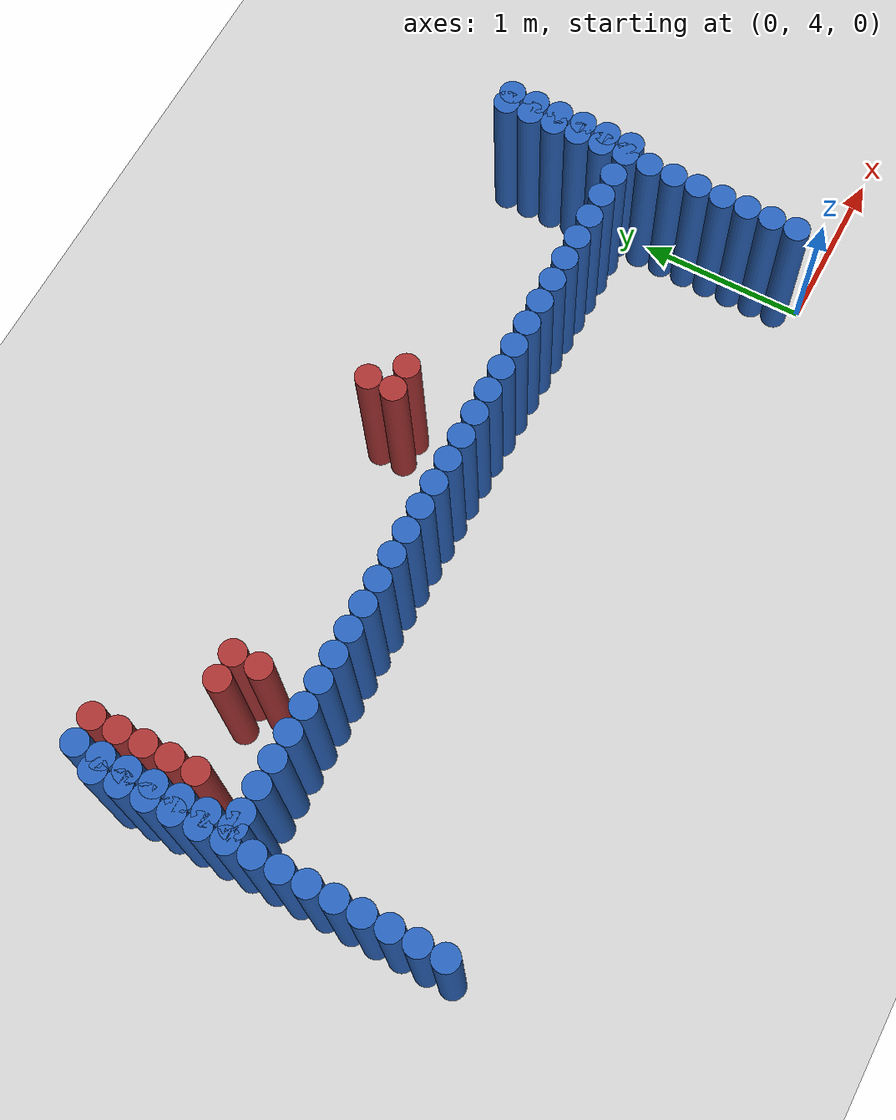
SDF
<sdf version="1.6">
 <world name="barn_world">
  <model name="ground_plane">
   <static>1</static>
   <link name="link">
    <collision name="collision">
     <geometry><plane><normal>0 0 1</normal><size>100 100</size></plane></geometry>
    </collision>
    <visual name="visual">
     <geometry><plane><normal>0 0 1</normal><size>100 100</size></plane></geometry>
     <material>
      <script><uri>file://media/materials/scripts/gazebo.material</uri><name>Gazebo/Grey</name></script>
     </material>
    </visual>
   </link>
  </model>
  <model name="unit_cylinder_81">
   <static>1</static>
   <pose>-4.4250 3.9750 0.5 0 0 0</pose>
   <link name="link">
    <collision name="collision">
     <geometry><cylinder><radius>0.075</radius><length>1</length></cylinder></geometry>
    </collision>
    <visual name="visual">
     <geometry><cylinder><radius>0.075</radius><length>1</length></cylinder></geometry>
     <material><ambient>0.152 0.379 0.72 1</ambient><diffuse>0.152 0.379 0.72 1</diffuse></material>
    </visual>
   </link>
  </model>
  <model name="unit_cylinder_82">
   <static>1</static>
   <pose>-0.0750 4.1250 0.5 0 0 0</pose>
   <link name="link">
    <collision name="collision">
     <geometry><cylinder><radius>0.075</radius><length>1</length></cylinder></geometry>
    </collision>
    <visual name="visual">
     <geometry><cylinder><radius>0.075</radius><length>1</length></cylinder></geometry>
     <material><ambient>0.152 0.379 0.72 1</ambient><diffuse>0.152 0.379 0.72 1</diffuse></material>
    </visual>
   </link>
  </model>
  <model name="unit_cylinder_83">
   <static>1</static>
   <pose>-4.4250 4.1250 0.5 0 0 0</pose>
   <link name="link">
    <collision name="collision">
     <geometry><cylinder><radius>0.075</radius><length>1</length></cylinder></geometry>
    </collision>
    <visual name="visual">
     <geometry><cylinder><radius>0.075</radius><length>1</length></cylinder></geometry>
     <material><ambient>0.152 0.379 0.72 1</ambient><diffuse>0.152 0.379 0.72 1</diffuse></material>
    </visual>
   </link>
  </model>
  <model name="unit_cylinder_84">
   <static>1</static>
   <pose>-0.0750 4.2750 0.5 0 0 0</pose>
   <link name="link">
    <collision name="collision">
     <geometry><cylinder><radius>0.075</radius><length>1</length></cylinder></geometry>
    </collision>
    <visual name="visual">
     <geometry><cylinder><radius>0.075</radius><length>1</length></cylinder></geometry>
     <material><ambient>0.152 0.379 0.72 1</ambient><diffuse>0.152 0.379 0.72 1</diffuse></material>
    </visual>
   </link>
  </model>
  <model name="unit_cylinder_85">
   <static>1</static>
   <pose>-4.4250 4.2750 0.5 0 0 0</pose>
   <link name="link">
    <collision name="collision">
     <geometry><cylinder><radius>0.075</radius><length>1</length></cylinder></geometry>
    </collision>
    <visual name="visual">
     <geometry><cylinder><radius>0.075</radius><length>1</length></cylinder></geometry>
     <material><ambient>0.152 0.379 0.72 1</ambient><diffuse>0.152 0.379 0.72 1</diffuse></material>
    </visual>
   </link>
  </model>
  <model name="unit_cylinder_86">
   <static>1</static>
   <pose>-0.0750 4.4250 0.5 0 0 0</pose>
   <link name="link">
    <collision name="collision">
     <geometry><cylinder><radius>0.075</radius><length>1</length></cylinder></geometry>
    </collision>
    <visual name="visual">
     <geometry><cylinder><radius>0.075</radius><length>1</length></cylinder></geometry>
     <material><ambient>0.152 0.379 0.72 1</ambient><diffuse>0.152 0.379 0.72 1</diffuse></material>
    </visual>
   </link>
  </model>
  <model name="unit_cylinder_87">
   <static>1</static>
   <pose>-4.4250 4.4250 0.5 0 0 0</pose>
   <link name="link">
    <collision name="collision">
     <geometry><cylinder><radius>0.075</radius><length>1</length></cylinder></geometry>
    </collision>
    <visual name="visual">
     <geometry><cylinder><radius>0.075</radius><length>1</length></cylinder></geometry>
     <material><ambient>0.152 0.379 0.72 1</ambient><diffuse>0.152 0.379 0.72 1</diffuse></material>
    </visual>
   </link>
  </model>
  <model name="unit_cylinder_88">
   <static>1</static>
   <pose>-0.0750 4.5750 0.5 0 0 0</pose>
   <link name="link">
    <collision name="collision">
     <geometry><cylinder><radius>0.075</radius><length>1</length></cylinder></geometry>
    </collision>
    <visual name="visual">
     <geometry><cylinder><radius>0.075</radius><length>1</length></cylinder></geometry>
     <material><ambient>0.152 0.379 0.72 1</ambient><diffuse>0.152 0.379 0.72 1</diffuse></material>
    </visual>
   </link>
  </model>
  <model name="unit_cylinder_89">
   <static>1</static>
   <pose>-4.4250 4.5750 0.5 0 0 0</pose>
   <link name="link">
    <collision name="collision">
     <geometry><cylinder><radius>0.075</radius><length>1</length></cylinder></geometry>
    </collision>
    <visual name="visual">
     <geometry><cylinder><radius>0.075</radius><length>1</length></cylinder></geometry>
     <material><ambient>0.152 0.379 0.72 1</ambient><diffuse>0.152 0.379 0.72 1</diffuse></material>
    </visual>
   </link>
  </model>
  <model name="unit_cylinder_90">
   <static>1</static>
   <pose>-0.0750 4.7250 0.5 0 0 0</pose>
   <link name="link">
    <collision name="collision">
     <geometry><cylinder><radius>0.075</radius><length>1</length></cylinder></geometry>
    </collision>
    <visual name="visual">
     <geometry><cylinder><radius>0.075</radius><length>1</length></cylinder></geometry>
     <material><ambient>0.152 0.379 0.72 1</ambient><diffuse>0.152 0.379 0.72 1</diffuse></material>
    </visual>
   </link>
  </model>
  <model name="unit_cylinder_91">
   <static>1</static>
   <pose>-4.4250 4.7250 0.5 0 0 0</pose>
   <link name="link">
    <collision name="collision">
     <geometry><cylinder><radius>0.075</radius><length>1</length></cylinder></geometry>
    </collision>
    <visual name="visual">
     <geometry><cylinder><radius>0.075</radius><length>1</length></cylinder></geometry>
     <material><ambient>0.152 0.379 0.72 1</ambient><diffuse>0.152 0.379 0.72 1</diffuse></material>
    </visual>
   </link>
  </model>
  <model name="unit_cylinder_92">
   <static>1</static>
   <pose>-0.0750 4.8750 0.5 0 0 0</pose>
   <link name="link">
    <collision name="collision">
     <geometry><cylinder><radius>0.075</radius><length>1</length></cylinder></geometry>
    </collision>
    <visual name="visual">
     <geometry><cylinder><radius>0.075</radius><length>1</length></cylinder></geometry>
     <material><ambient>0.152 0.379 0.72 1</ambient><diffuse>0.152 0.379 0.72 1</diffuse></material>
    </visual>
   </link>
  </model>
  <model name="unit_cylinder_93">
   <static>1</static>
   <pose>-4.4250 4.8750 0.5 0 0 0</pose>
   <link name="link">
    <collision name="collision">
     <geometry><cylinder><radius>0.075</radius><length>1</length></cylinder></geometry>
    </collision>
    <visual name="visual">
     <geometry><cylinder><radius>0.075</radius><length>1</length></cylinder></geometry>
     <material><ambient>0.152 0.379 0.72 1</ambient><diffuse>0.152 0.379 0.72 1</diffuse></material>
    </visual>
   </link>
  </model>
  <model name="unit_cylinder_94">
   <static>1</static>
   <pose>-0.0750 5.0250 0.5 0 0 0</pose>
   <link name="link">
    <collision name="collision">
     <geometry><cylinder><radius>0.075</radius><length>1</length></cylinder></geometry>
    </collision>
    <visual name="visual">
     <geometry><cylinder><radius>0.075</radius><length>1</length></cylinder></geometry>
     <material><ambient>0.152 0.379 0.72 1</ambient><diffuse>0.152 0.379 0.72 1</diffuse></material>
    </visual>
   </link>
  </model>
  <model name="unit_cylinder_95">
   <static>1</static>
   <pose>-4.4250 5.0250 0.5 0 0 0</pose>
   <link name="link">
    <collision name="collision">
     <geometry><cylinder><radius>0.075</radius><length>1</length></cylinder></geometry>
    </collision>
    <visual name="visual">
     <geometry><cylinder><radius>0.075</radius><length>1</length></cylinder></geometry>
     <material><ambient>0.152 0.379 0.72 1</ambient><diffuse>0.152 0.379 0.72 1</diffuse></material>
    </visual>
   </link>
  </model>
  <model name="unit_cylinder_96">
   <static>1</static>
   <pose>-0.0750 5.1750 0.5 0 0 0</pose>
   <link name="link">
    <collision name="collision">
     <geometry><cylinder><radius>0.075</radius><length>1</length></cylinder></geometry>
    </collision>
    <visual name="visual">
     <geometry><cylinder><radius>0.075</radius><length>1</length></cylinder></geometry>
     <material><ambient>0.152 0.379 0.72 1</ambient><diffuse>0.152 0.379 0.72 1</diffuse></material>
    </visual>
   </link>
  </model>
  <model name="unit_cylinder_97">
   <static>1</static>
   <pose>-0.2250 5.1750 0.5 0 0 0</pose>
   <link name="link">
    <collision name="collision">
     <geometry><cylinder><radius>0.075</radius><length>1</length></cylinder></geometry>
    </collision>
    <visual name="visual">
     <geometry><cylinder><radius>0.075</radius><length>1</length></cylinder></geometry>
     <material><ambient>0.152 0.379 0.72 1</ambient><diffuse>0.152 0.379 0.72 1</diffuse></material>
    </visual>
   </link>
  </model>
  <model name="unit_cylinder_98">
   <static>1</static>
   <pose>-0.3750 5.1750 0.5 0 0 0</pose>
   <link name="link">
    <collision name="collision">
     <geometry><cylinder><radius>0.075</radius><length>1</length></cylinder></geometry>
    </collision>
    <visual name="visual">
     <geometry><cylinder><radius>0.075</radius><length>1</length></cylinder></geometry>
     <material><ambient>0.152 0.379 0.72 1</ambient><diffuse>0.152 0.379 0.72 1</diffuse></material>
    </visual>
   </link>
  </model>
  <model name="unit_cylinder_99">
   <static>1</static>
   <pose>-0.5250 5.1750 0.5 0 0 0</pose>
   <link name="link">
    <collision name="collision">
     <geometry><cylinder><radius>0.075</radius><length>1</length></cylinder></geometry>
    </collision>
    <visual name="visual">
     <geometry><cylinder><radius>0.075</radius><length>1</length></cylinder></geometry>
     <material><ambient>0.152 0.379 0.72 1</ambient><diffuse>0.152 0.379 0.72 1</diffuse></material>
    </visual>
   </link>
  </model>
  <model name="unit_cylinder_100">
   <static>1</static>
   <pose>-0.6750 5.1750 0.5 0 0 0</pose>
   <link name="link">
    <collision name="collision">
     <geometry><cylinder><radius>0.075</radius><length>1</length></cylinder></geometry>
    </collision>
    <visual name="visual">
     <geometry><cylinder><radius>0.075</radius><length>1</length></cylinder></geometry>
     <material><ambient>0.152 0.379 0.72 1</ambient><diffuse>0.152 0.379 0.72 1</diffuse></material>
    </visual>
   </link>
  </model>
  <model name="unit_cylinder_101">
   <static>1</static>
   <pose>-0.8250 5.1750 0.5 0 0 0</pose>
   <link name="link">
    <collision name="collision">
     <geometry><cylinder><radius>0.075</radius><length>1</length></cylinder></geometry>
    </collision>
    <visual name="visual">
     <geometry><cylinder><radius>0.075</radius><length>1</length></cylinder></geometry>
     <material><ambient>0.152 0.379 0.72 1</ambient><diffuse>0.152 0.379 0.72 1</diffuse></material>
    </visual>
   </link>
  </model>
  <model name="unit_cylinder_102">
   <static>1</static>
   <pose>-0.9750 5.1750 0.5 0 0 0</pose>
   <link name="link">
    <collision name="collision">
     <geometry><cylinder><radius>0.075</radius><length>1</length></cylinder></geometry>
    </collision>
    <visual name="visual">
     <geometry><cylinder><radius>0.075</radius><length>1</length></cylinder></geometry>
     <material><ambient>0.152 0.379 0.72 1</ambient><diffuse>0.152 0.379 0.72 1</diffuse></material>
    </visual>
   </link>
  </model>
  <model name="unit_cylinder_103">
   <static>1</static>
   <pose>-1.1250 5.1750 0.5 0 0 0</pose>
   <link name="link">
    <collision name="collision">
     <geometry><cylinder><radius>0.075</radius><length>1</length></cylinder></geometry>
    </collision>
    <visual name="visual">
     <geometry><cylinder><radius>0.075</radius><length>1</length></cylinder></geometry>
     <material><ambient>0.152 0.379 0.72 1</ambient><diffuse>0.152 0.379 0.72 1</diffuse></material>
    </visual>
   </link>
  </model>
  <model name="unit_cylinder_104">
   <static>1</static>
   <pose>-1.2750 5.1750 0.5 0 0 0</pose>
   <link name="link">
    <collision name="collision">
     <geometry><cylinder><radius>0.075</radius><length>1</length></cylinder></geometry>
    </collision>
    <visual name="visual">
     <geometry><cylinder><radius>0.075</radius><length>1</length></cylinder></geometry>
     <material><ambient>0.152 0.379 0.72 1</ambient><diffuse>0.152 0.379 0.72 1</diffuse></material>
    </visual>
   </link>
  </model>
  <model name="unit_cylinder_105">
   <static>1</static>
   <pose>-1.4250 5.1750 0.5 0 0 0</pose>
   <link name="link">
    <collision name="collision">
     <geometry><cylinder><radius>0.075</radius><length>1</length></cylinder></geometry>
    </collision>
    <visual name="visual">
     <geometry><cylinder><radius>0.075</radius><length>1</length></cylinder></geometry>
     <material><ambient>0.152 0.379 0.72 1</ambient><diffuse>0.152 0.379 0.72 1</diffuse></material>
    </visual>
   </link>
  </model>
  <model name="unit_cylinder_106">
   <static>1</static>
   <pose>-1.5750 5.1750 0.5 0 0 0</pose>
   <link name="link">
    <collision name="collision">
     <geometry><cylinder><radius>0.075</radius><length>1</length></cylinder></geometry>
    </collision>
    <visual name="visual">
     <geometry><cylinder><radius>0.075</radius><length>1</length></cylinder></geometry>
     <material><ambient>0.152 0.379 0.72 1</ambient><diffuse>0.152 0.379 0.72 1</diffuse></material>
    </visual>
   </link>
  </model>
  <model name="unit_cylinder_107">
   <static>1</static>
   <pose>-1.7250 5.1750 0.5 0 0 0</pose>
   <link name="link">
    <collision name="collision">
     <geometry><cylinder><radius>0.075</radius><length>1</length></cylinder></geometry>
    </collision>
    <visual name="visual">
     <geometry><cylinder><radius>0.075</radius><length>1</length></cylinder></geometry>
     <material><ambient>0.152 0.379 0.72 1</ambient><diffuse>0.152 0.379 0.72 1</diffuse></material>
    </visual>
   </link>
  </model>
  <model name="unit_cylinder_108">
   <static>1</static>
   <pose>-1.8750 5.1750 0.5 0 0 0</pose>
   <link name="link">
    <collision name="collision">
     <geometry><cylinder><radius>0.075</radius><length>1</length></cylinder></geometry>
    </collision>
    <visual name="visual">
     <geometry><cylinder><radius>0.075</radius><length>1</length></cylinder></geometry>
     <material><ambient>0.152 0.379 0.72 1</ambient><diffuse>0.152 0.379 0.72 1</diffuse></material>
    </visual>
   </link>
  </model>
  <model name="unit_cylinder_109">
   <static>1</static>
   <pose>-2.0250 5.1750 0.5 0 0 0</pose>
   <link name="link">
    <collision name="collision">
     <geometry><cylinder><radius>0.075</radius><length>1</length></cylinder></geometry>
    </collision>
    <visual name="visual">
     <geometry><cylinder><radius>0.075</radius><length>1</length></cylinder></geometry>
     <material><ambient>0.152 0.379 0.72 1</ambient><diffuse>0.152 0.379 0.72 1</diffuse></material>
    </visual>
   </link>
  </model>
  <model name="unit_cylinder_110">
   <static>1</static>
   <pose>-2.1750 5.1750 0.5 0 0 0</pose>
   <link name="link">
    <collision name="collision">
     <geometry><cylinder><radius>0.075</radius><length>1</length></cylinder></geometry>
    </collision>
    <visual name="visual">
     <geometry><cylinder><radius>0.075</radius><length>1</length></cylinder></geometry>
     <material><ambient>0.152 0.379 0.72 1</ambient><diffuse>0.152 0.379 0.72 1</diffuse></material>
    </visual>
   </link>
  </model>
  <model name="unit_cylinder_111">
   <static>1</static>
   <pose>-2.3250 5.1750 0.5 0 0 0</pose>
   <link name="link">
    <collision name="collision">
     <geometry><cylinder><radius>0.075</radius><length>1</length></cylinder></geometry>
    </collision>
    <visual name="visual">
     <geometry><cylinder><radius>0.075</radius><length>1</length></cylinder></geometry>
     <material><ambient>0.152 0.379 0.72 1</ambient><diffuse>0.152 0.379 0.72 1</diffuse></material>
    </visual>
   </link>
  </model>
  <model name="unit_cylinder_112">
   <static>1</static>
   <pose>-2.4750 5.1750 0.5 0 0 0</pose>
   <link name="link">
    <collision name="collision">
     <geometry><cylinder><radius>0.075</radius><length>1</length></cylinder></geometry>
    </collision>
    <visual name="visual">
     <geometry><cylinder><radius>0.075</radius><length>1</length></cylinder></geometry>
     <material><ambient>0.152 0.379 0.72 1</ambient><diffuse>0.152 0.379 0.72 1</diffuse></material>
    </visual>
   </link>
  </model>
  <model name="unit_cylinder_113">
   <static>1</static>
   <pose>-2.6250 5.1750 0.5 0 0 0</pose>
   <link name="link">
    <collision name="collision">
     <geometry><cylinder><radius>0.075</radius><length>1</length></cylinder></geometry>
    </collision>
    <visual name="visual">
     <geometry><cylinder><radius>0.075</radius><length>1</length></cylinder></geometry>
     <material><ambient>0.152 0.379 0.72 1</ambient><diffuse>0.152 0.379 0.72 1</diffuse></material>
    </visual>
   </link>
  </model>
  <model name="unit_cylinder_114">
   <static>1</static>
   <pose>-2.7750 5.1750 0.5 0 0 0</pose>
   <link name="link">
    <collision name="collision">
     <geometry><cylinder><radius>0.075</radius><length>1</length></cylinder></geometry>
    </collision>
    <visual name="visual">
     <geometry><cylinder><radius>0.075</radius><length>1</length></cylinder></geometry>
     <material><ambient>0.152 0.379 0.72 1</ambient><diffuse>0.152 0.379 0.72 1</diffuse></material>
    </visual>
   </link>
  </model>
  <model name="unit_cylinder_115">
   <static>1</static>
   <pose>-2.9250 5.1750 0.5 0 0 0</pose>
   <link name="link">
    <collision name="collision">
     <geometry><cylinder><radius>0.075</radius><length>1</length></cylinder></geometry>
    </collision>
    <visual name="visual">
     <geometry><cylinder><radius>0.075</radius><length>1</length></cylinder></geometry>
     <material><ambient>0.152 0.379 0.72 1</ambient><diffuse>0.152 0.379 0.72 1</diffuse></material>
    </visual>
   </link>
  </model>
  <model name="unit_cylinder_116">
   <static>1</static>
   <pose>-3.0750 5.1750 0.5 0 0 0</pose>
   <link name="link">
    <collision name="collision">
     <geometry><cylinder><radius>0.075</radius><length>1</length></cylinder></geometry>
    </collision>
    <visual name="visual">
     <geometry><cylinder><radius>0.075</radius><length>1</length></cylinder></geometry>
     <material><ambient>0.152 0.379 0.72 1</ambient><diffuse>0.152 0.379 0.72 1</diffuse></material>
    </visual>
   </link>
  </model>
  <model name="unit_cylinder_117">
   <static>1</static>
   <pose>-3.2250 5.1750 0.5 0 0 0</pose>
   <link name="link">
    <collision name="collision">
     <geometry><cylinder><radius>0.075</radius><length>1</length></cylinder></geometry>
    </collision>
    <visual name="visual">
     <geometry><cylinder><radius>0.075</radius><length>1</length></cylinder></geometry>
     <material><ambient>0.152 0.379 0.72 1</ambient><diffuse>0.152 0.379 0.72 1</diffuse></material>
    </visual>
   </link>
  </model>
  <model name="unit_cylinder_118">
   <static>1</static>
   <pose>-3.3750 5.1750 0.5 0 0 0</pose>
   <link name="link">
    <collision name="collision">
     <geometry><cylinder><radius>0.075</radius><length>1</length></cylinder></geometry>
    </collision>
    <visual name="visual">
     <geometry><cylinder><radius>0.075</radius><length>1</length></cylinder></geometry>
     <material><ambient>0.152 0.379 0.72 1</ambient><diffuse>0.152 0.379 0.72 1</diffuse></material>
    </visual>
   </link>
  </model>
  <model name="unit_cylinder_119">
   <static>1</static>
   <pose>-3.5250 5.1750 0.5 0 0 0</pose>
   <link name="link">
    <collision name="collision">
     <geometry><cylinder><radius>0.075</radius><length>1</length></cylinder></geometry>
    </collision>
    <visual name="visual">
     <geometry><cylinder><radius>0.075</radius><length>1</length></cylinder></geometry>
     <material><ambient>0.152 0.379 0.72 1</ambient><diffuse>0.152 0.379 0.72 1</diffuse></material>
    </visual>
   </link>
  </model>
  <model name="unit_cylinder_120">
   <static>1</static>
   <pose>-3.6750 5.1750 0.5 0 0 0</pose>
   <link name="link">
    <collision name="collision">
     <geometry><cylinder><radius>0.075</radius><length>1</length></cylinder></geometry>
    </collision>
    <visual name="visual">
     <geometry><cylinder><radius>0.075</radius><length>1</length></cylinder></geometry>
     <material><ambient>0.152 0.379 0.72 1</ambient><diffuse>0.152 0.379 0.72 1</diffuse></material>
    </visual>
   </link>
  </model>
  <model name="unit_cylinder_121">
   <static>1</static>
   <pose>-3.8250 5.1750 0.5 0 0 0</pose>
   <link name="link">
    <collision name="collision">
     <geometry><cylinder><radius>0.075</radius><length>1</length></cylinder></geometry>
    </collision>
    <visual name="visual">
     <geometry><cylinder><radius>0.075</radius><length>1</length></cylinder></geometry>
     <material><ambient>0.152 0.379 0.72 1</ambient><diffuse>0.152 0.379 0.72 1</diffuse></material>
    </visual>
   </link>
  </model>
  <model name="unit_cylinder_122">
   <static>1</static>
   <pose>-3.9750 5.1750 0.5 0 0 0</pose>
   <link name="link">
    <collision name="collision">
     <geometry><cylinder><radius>0.075</radius><length>1</length></cylinder></geometry>
    </collision>
    <visual name="visual">
     <geometry><cylinder><radius>0.075</radius><length>1</length></cylinder></geometry>
     <material><ambient>0.152 0.379 0.72 1</ambient><diffuse>0.152 0.379 0.72 1</diffuse></material>
    </visual>
   </link>
  </model>
  <model name="unit_cylinder_123">
   <static>1</static>
   <pose>-4.1250 5.1750 0.5 0 0 0</pose>
   <link name="link">
    <collision name="collision">
     <geometry><cylinder><radius>0.075</radius><length>1</length></cylinder></geometry>
    </collision>
    <visual name="visual">
     <geometry><cylinder><radius>0.075</radius><length>1</length></cylinder></geometry>
     <material><ambient>0.152 0.379 0.72 1</ambient><diffuse>0.152 0.379 0.72 1</diffuse></material>
    </visual>
   </link>
  </model>
  <model name="unit_cylinder_124">
   <static>1</static>
   <pose>-4.2750 5.1750 0.5 0 0 0</pose>
   <link name="link">
    <collision name="collision">
     <geometry><cylinder><radius>0.075</radius><length>1</length></cylinder></geometry>
    </collision>
    <visual name="visual">
     <geometry><cylinder><radius>0.075</radius><length>1</length></cylinder></geometry>
     <material><ambient>0.152 0.379 0.72 1</ambient><diffuse>0.152 0.379 0.72 1</diffuse></material>
    </visual>
   </link>
  </model>
  <model name="unit_cylinder_125">
   <static>1</static>
   <pose>-4.4250 5.1750 0.5 0 0 0</pose>
   <link name="link">
    <collision name="collision">
     <geometry><cylinder><radius>0.075</radius><length>1</length></cylinder></geometry>
    </collision>
    <visual name="visual">
     <geometry><cylinder><radius>0.075</radius><length>1</length></cylinder></geometry>
     <material><ambient>0.152 0.379 0.72 1</ambient><diffuse>0.152 0.379 0.72 1</diffuse></material>
    </visual>
   </link>
  </model>
  <model name="unit_cylinder_126">
   <static>1</static>
   <pose>-4.3500 5.1750 0.5 0 0 0</pose>
   <link name="link">
    <collision name="collision">
     <geometry><cylinder><radius>0.075</radius><length>1</length></cylinder></geometry>
    </collision>
    <visual name="visual">
     <geometry><cylinder><radius>0.075</radius><length>1</length></cylinder></geometry>
     <material><ambient>0.152 0.379 0.72 1</ambient><diffuse>0.152 0.379 0.72 1</diffuse></material>
    </visual>
   </link>
  </model>
  <model name="unit_cylinder_127">
   <static>1</static>
   <pose>-4.3500 5.3250 0.5 0 0 0</pose>
   <link name="link">
    <collision name="collision">
     <geometry><cylinder><radius>0.075</radius><length>1</length></cylinder></geometry>
    </collision>
    <visual name="visual">
     <geometry><cylinder><radius>0.075</radius><length>1</length></cylinder></geometry>
     <material><ambient>0.152 0.379 0.72 1</ambient><diffuse>0.152 0.379 0.72 1</diffuse></material>
    </visual>
   </link>
  </model>
  <model name="unit_cylinder_128">
   <static>1</static>
   <pose>-4.3500 5.4750 0.5 0 0 0</pose>
   <link name="link">
    <collision name="collision">
     <geometry><cylinder><radius>0.075</radius><length>1</length></cylinder></geometry>
    </collision>
    <visual name="visual">
     <geometry><cylinder><radius>0.075</radius><length>1</length></cylinder></geometry>
     <material><ambient>0.152 0.379 0.72 1</ambient><diffuse>0.152 0.379 0.72 1</diffuse></material>
    </visual>
   </link>
  </model>
  <model name="unit_cylinder_129">
   <static>1</static>
   <pose>-4.3500 5.6250 0.5 0 0 0</pose>
   <link name="link">
    <collision name="collision">
     <geometry><cylinder><radius>0.075</radius><length>1</length></cylinder></geometry>
    </collision>
    <visual name="visual">
     <geometry><cylinder><radius>0.075</radius><length>1</length></cylinder></geometry>
     <material><ambient>0.152 0.379 0.72 1</ambient><diffuse>0.152 0.379 0.72 1</diffuse></material>
    </visual>
   </link>
  </model>
  <model name="unit_cylinder_130">
   <static>1</static>
   <pose>-4.3500 5.7750 0.5 0 0 0</pose>
   <link name="link">
    <collision name="collision">
     <geometry><cylinder><radius>0.075</radius><length>1</length></cylinder></geometry>
    </collision>
    <visual name="visual">
     <geometry><cylinder><radius>0.075</radius><length>1</length></cylinder></geometry>
     <material><ambient>0.152 0.379 0.72 1</ambient><diffuse>0.152 0.379 0.72 1</diffuse></material>
    </visual>
   </link>
  </model>
  <model name="unit_cylinder_131">
   <static>1</static>
   <pose>-4.3500 5.9250 0.5 0 0 0</pose>
   <link name="link">
    <collision name="collision">
     <geometry><cylinder><radius>0.075</radius><length>1</length></cylinder></geometry>
    </collision>
    <visual name="visual">
     <geometry><cylinder><radius>0.075</radius><length>1</length></cylinder></geometry>
     <material><ambient>0.152 0.379 0.72 1</ambient><diffuse>0.152 0.379 0.72 1</diffuse></material>
    </visual>
   </link>
  </model>
  <model name="unit_cylinder_132">
   <static>1</static>
   <pose>-4.3500 6.0750 0.5 0 0 0</pose>
   <link name="link">
    <collision name="collision">
     <geometry><cylinder><radius>0.075</radius><length>1</length></cylinder></geometry>
    </collision>
    <visual name="visual">
     <geometry><cylinder><radius>0.075</radius><length>1</length></cylinder></geometry>
     <material><ambient>0.152 0.379 0.72 1</ambient><diffuse>0.152 0.379 0.72 1</diffuse></material>
    </visual>
   </link>
  </model>
  <model name="unit_cylinder_156">
   <static>1</static>
   <pose>-4.2000 5.4750 0.5 0 0 0</pose>
   <link name="link">
    <collision name="collision">
     <geometry><cylinder><radius>0.075</radius><length>1</length></cylinder></geometry>
    </collision>
    <visual name="visual">
     <geometry><cylinder><radius>0.075</radius><length>1</length></cylinder></geometry>
     <material><ambient>0.648 0.192 0.192 1</ambient><diffuse>0.648 0.192 0.192 1</diffuse></material>
    </visual>
   </link>
  </model>
  <model name="unit_cylinder_157">
   <static>1</static>
   <pose>-4.2000 5.6250 0.5 0 0 0</pose>
   <link name="link">
    <collision name="collision">
     <geometry><cylinder><radius>0.075</radius><length>1</length></cylinder></geometry>
    </collision>
    <visual name="visual">
     <geometry><cylinder><radius>0.075</radius><length>1</length></cylinder></geometry>
     <material><ambient>0.648 0.192 0.192 1</ambient><diffuse>0.648 0.192 0.192 1</diffuse></material>
    </visual>
   </link>
  </model>
  <model name="unit_cylinder_158">
   <static>1</static>
   <pose>-4.2000 5.7750 0.5 0 0 0</pose>
   <link name="link">
    <collision name="collision">
     <geometry><cylinder><radius>0.075</radius><length>1</length></cylinder></geometry>
    </collision>
    <visual name="visual">
     <geometry><cylinder><radius>0.075</radius><length>1</length></cylinder></geometry>
     <material><ambient>0.648 0.192 0.192 1</ambient><diffuse>0.648 0.192 0.192 1</diffuse></material>
    </visual>
   </link>
  </model>
  <model name="unit_cylinder_159">
   <static>1</static>
   <pose>-4.2000 5.9250 0.5 0 0 0</pose>
   <link name="link">
    <collision name="collision">
     <geometry><cylinder><radius>0.075</radius><length>1</length></cylinder></geometry>
    </collision>
    <visual name="visual">
     <geometry><cylinder><radius>0.075</radius><length>1</length></cylinder></geometry>
     <material><ambient>0.648 0.192 0.192 1</ambient><diffuse>0.648 0.192 0.192 1</diffuse></material>
    </visual>
   </link>
  </model>
  <model name="unit_cylinder_160">
   <static>1</static>
   <pose>-4.2000 6.0750 0.5 0 0 0</pose>
   <link name="link">
    <collision name="collision">
     <geometry><cylinder><radius>0.075</radius><length>1</length></cylinder></geometry>
    </collision>
    <visual name="visual">
     <geometry><cylinder><radius>0.075</radius><length>1</length></cylinder></geometry>
     <material><ambient>0.648 0.192 0.192 1</ambient><diffuse>0.648 0.192 0.192 1</diffuse></material>
    </visual>
   </link>
  </model>
  <model name="unit_cylinder_196">
   <static>1</static>
   <pose>-3.7500 5.6250 0.5 0 0 0</pose>
   <link name="link">
    <collision name="collision">
     <geometry><cylinder><radius>0.075</radius><length>1</length></cylinder></geometry>
    </collision>
    <visual name="visual">
     <geometry><cylinder><radius>0.075</radius><length>1</length></cylinder></geometry>
     <material><ambient>0.648 0.192 0.192 1</ambient><diffuse>0.648 0.192 0.192 1</diffuse></material>
    </visual>
   </link>
  </model>
  <model name="unit_cylinder_198">
   <static>1</static>
   <pose>-3.6000 5.4750 0.5 0 0 0</pose>
   <link name="link">
    <collision name="collision">
     <geometry><cylinder><radius>0.075</radius><length>1</length></cylinder></geometry>
    </collision>
    <visual name="visual">
     <geometry><cylinder><radius>0.075</radius><length>1</length></cylinder></geometry>
     <material><ambient>0.648 0.192 0.192 1</ambient><diffuse>0.648 0.192 0.192 1</diffuse></material>
    </visual>
   </link>
  </model>
  <model name="unit_cylinder_199">
   <static>1</static>
   <pose>-3.6000 5.6250 0.5 0 0 0</pose>
   <link name="link">
    <collision name="collision">
     <geometry><cylinder><radius>0.075</radius><length>1</length></cylinder></geometry>
    </collision>
    <visual name="visual">
     <geometry><cylinder><radius>0.075</radius><length>1</length></cylinder></geometry>
     <material><ambient>0.648 0.192 0.192 1</ambient><diffuse>0.648 0.192 0.192 1</diffuse></material>
    </visual>
   </link>
  </model>
  <model name="unit_cylinder_228">
   <static>1</static>
   <pose>-1.9500 5.6250 0.5 0 0 0</pose>
   <link name="link">
    <collision name="collision">
     <geometry><cylinder><radius>0.075</radius><length>1</length></cylinder></geometry>
    </collision>
    <visual name="visual">
     <geometry><cylinder><radius>0.075</radius><length>1</length></cylinder></geometry>
     <material><ambient>0.648 0.192 0.192 1</ambient><diffuse>0.648 0.192 0.192 1</diffuse></material>
    </visual>
   </link>
  </model>
  <model name="unit_cylinder_229">
   <static>1</static>
   <pose>-1.9500 5.7750 0.5 0 0 0</pose>
   <link name="link">
    <collision name="collision">
     <geometry><cylinder><radius>0.075</radius><length>1</length></cylinder></geometry>
    </collision>
    <visual name="visual">
     <geometry><cylinder><radius>0.075</radius><length>1</length></cylinder></geometry>
     <material><ambient>0.648 0.192 0.192 1</ambient><diffuse>0.648 0.192 0.192 1</diffuse></material>
    </visual>
   </link>
  </model>
  <model name="unit_cylinder_230">
   <static>1</static>
   <pose>-1.8000 5.6250 0.5 0 0 0</pose>
   <link name="link">
    <collision name="collision">
     <geometry><cylinder><radius>0.075</radius><length>1</length></cylinder></geometry>
    </collision>
    <visual name="visual">
     <geometry><cylinder><radius>0.075</radius><length>1</length></cylinder></geometry>
     <material><ambient>0.648 0.192 0.192 1</ambient><diffuse>0.648 0.192 0.192 1</diffuse></material>
    </visual>
   </link>
  </model>
  <model name="unit_cylinder_286">
   <static>1</static>
   <pose>0.0000 5.1750 0.5 0 0 0</pose>
   <link name="link">
    <collision name="collision">
     <geometry><cylinder><radius>0.075</radius><length>1</length></cylinder></geometry>
    </collision>
    <visual name="visual">
     <geometry><cylinder><radius>0.075</radius><length>1</length></cylinder></geometry>
     <material><ambient>0.152 0.379 0.72 1</ambient><diffuse>0.152 0.379 0.72 1</diffuse></material>
    </visual>
   </link>
  </model>
  <model name="unit_cylinder_287">
   <static>1</static>
   <pose>0.0000 5.3250 0.5 0 0 0</pose>
   <link name="link">
    <collision name="collision">
     <geometry><cylinder><radius>0.075</radius><length>1</length></cylinder></geometry>
    </collision>
    <visual name="visual">
     <geometry><cylinder><radius>0.075</radius><length>1</length></cylinder></geometry>
     <material><ambient>0.152 0.379 0.72 1</ambient><diffuse>0.152 0.379 0.72 1</diffuse></material>
    </visual>
   </link>
  </model>
  <model name="unit_cylinder_288">
   <static>1</static>
   <pose>0.0000 5.4750 0.5 0 0 0</pose>
   <link name="link">
    <collision name="collision">
     <geometry><cylinder><radius>0.075</radius><length>1</length></cylinder></geometry>
    </collision>
    <visual name="visual">
     <geometry><cylinder><radius>0.075</radius><length>1</length></cylinder></geometry>
     <material><ambient>0.152 0.379 0.72 1</ambient><diffuse>0.152 0.379 0.72 1</diffuse></material>
    </visual>
   </link>
  </model>
  <model name="unit_cylinder_289">
   <static>1</static>
   <pose>0.0000 5.6250 0.5 0 0 0</pose>
   <link name="link">
    <collision name="collision">
     <geometry><cylinder><radius>0.075</radius><length>1</length></cylinder></geometry>
    </collision>
    <visual name="visual">
     <geometry><cylinder><radius>0.075</radius><length>1</length></cylinder></geometry>
     <material><ambient>0.152 0.379 0.72 1</ambient><diffuse>0.152 0.379 0.72 1</diffuse></material>
    </visual>
   </link>
  </model>
  <model name="unit_cylinder_290">
   <static>1</static>
   <pose>0.0000 5.7750 0.5 0 0 0</pose>
   <link name="link">
    <collision name="collision">
     <geometry><cylinder><radius>0.075</radius><length>1</length></cylinder></geometry>
    </collision>
    <visual name="visual">
     <geometry><cylinder><radius>0.075</radius><length>1</length></cylinder></geometry>
     <material><ambient>0.152 0.379 0.72 1</ambient><diffuse>0.152 0.379 0.72 1</diffuse></material>
    </visual>
   </link>
  </model>
  <model name="unit_cylinder_291">
   <static>1</static>
   <pose>0.0000 5.9250 0.5 0 0 0</pose>
   <link name="link">
    <collision name="collision">
     <geometry><cylinder><radius>0.075</radius><length>1</length></cylinder></geometry>
    </collision>
    <visual name="visual">
     <geometry><cylinder><radius>0.075</radius><length>1</length></cylinder></geometry>
     <material><ambient>0.152 0.379 0.72 1</ambient><diffuse>0.152 0.379 0.72 1</diffuse></material>
    </visual>
   </link>
  </model>
  <model name="unit_cylinder_346">
   <static>1</static>
   <pose>-0.0750 5.1750 0.5 0 0 0</pose>
   <link name="link">
    <collision name="collision">
     <geometry><cylinder><radius>0.075</radius><length>1</length></cylinder></geometry>
    </collision>
    <visual name="visual">
     <geometry><cylinder><radius>0.075</radius><length>1</length></cylinder></geometry>
     <material><ambient>0.152 0.379 0.72 1</ambient><diffuse>0.152 0.379 0.72 1</diffuse></material>
    </visual>
   </link>
  </model>
  <model name="unit_cylinder_347">
   <static>1</static>
   <pose>-4.4250 5.1750 0.5 0 0 0</pose>
   <link name="link">
    <collision name="collision">
     <geometry><cylinder><radius>0.075</radius><length>1</length></cylinder></geometry>
    </collision>
    <visual name="visual">
     <geometry><cylinder><radius>0.075</radius><length>1</length></cylinder></geometry>
     <material><ambient>0.152 0.379 0.72 1</ambient><diffuse>0.152 0.379 0.72 1</diffuse></material>
    </visual>
   </link>
  </model>
  <model name="unit_cylinder_348">
   <static>1</static>
   <pose>-0.0750 5.3250 0.5 0 0 0</pose>
   <link name="link">
    <collision name="collision">
     <geometry><cylinder><radius>0.075</radius><length>1</length></cylinder></geometry>
    </collision>
    <visual name="visual">
     <geometry><cylinder><radius>0.075</radius><length>1</length></cylinder></geometry>
     <material><ambient>0.152 0.379 0.72 1</ambient><diffuse>0.152 0.379 0.72 1</diffuse></material>
    </visual>
   </link>
  </model>
  <model name="unit_cylinder_349">
   <static>1</static>
   <pose>-4.4250 5.3250 0.5 0 0 0</pose>
   <link name="link">
    <collision name="collision">
     <geometry><cylinder><radius>0.075</radius><length>1</length></cylinder></geometry>
    </collision>
    <visual name="visual">
     <geometry><cylinder><radius>0.075</radius><length>1</length></cylinder></geometry>
     <material><ambient>0.152 0.379 0.72 1</ambient><diffuse>0.152 0.379 0.72 1</diffuse></material>
    </visual>
   </link>
  </model>
  <model name="unit_cylinder_350">
   <static>1</static>
   <pose>-0.0750 5.4750 0.5 0 0 0</pose>
   <link name="link">
    <collision name="collision">
     <geometry><cylinder><radius>0.075</radius><length>1</length></cylinder></geometry>
    </collision>
    <visual name="visual">
     <geometry><cylinder><radius>0.075</radius><length>1</length></cylinder></geometry>
     <material><ambient>0.152 0.379 0.72 1</ambient><diffuse>0.152 0.379 0.72 1</diffuse></material>
    </visual>
   </link>
  </model>
  <model name="unit_cylinder_351">
   <static>1</static>
   <pose>-4.4250 5.4750 0.5 0 0 0</pose>
   <link name="link">
    <collision name="collision">
     <geometry><cylinder><radius>0.075</radius><length>1</length></cylinder></geometry>
    </collision>
    <visual name="visual">
     <geometry><cylinder><radius>0.075</radius><length>1</length></cylinder></geometry>
     <material><ambient>0.152 0.379 0.72 1</ambient><diffuse>0.152 0.379 0.72 1</diffuse></material>
    </visual>
   </link>
  </model>
  <model name="unit_cylinder_352">
   <static>1</static>
   <pose>-0.0750 5.6250 0.5 0 0 0</pose>
   <link name="link">
    <collision name="collision">
     <geometry><cylinder><radius>0.075</radius><length>1</length></cylinder></geometry>
    </collision>
    <visual name="visual">
     <geometry><cylinder><radius>0.075</radius><length>1</length></cylinder></geometry>
     <material><ambient>0.152 0.379 0.72 1</ambient><diffuse>0.152 0.379 0.72 1</diffuse></material>
    </visual>
   </link>
  </model>
  <model name="unit_cylinder_353">
   <static>1</static>
   <pose>-4.4250 5.6250 0.5 0 0 0</pose>
   <link name="link">
    <collision name="collision">
     <geometry><cylinder><radius>0.075</radius><length>1</length></cylinder></geometry>
    </collision>
    <visual name="visual">
     <geometry><cylinder><radius>0.075</radius><length>1</length></cylinder></geometry>
     <material><ambient>0.152 0.379 0.72 1</ambient><diffuse>0.152 0.379 0.72 1</diffuse></material>
    </visual>
   </link>
  </model>
  <model name="unit_cylinder_354">
   <static>1</static>
   <pose>-0.0750 5.7750 0.5 0 0 0</pose>
   <link name="link">
    <collision name="collision">
     <geometry><cylinder><radius>0.075</radius><length>1</length></cylinder></geometry>
    </collision>
    <visual name="visual">
     <geometry><cylinder><radius>0.075</radius><length>1</length></cylinder></geometry>
     <material><ambient>0.152 0.379 0.72 1</ambient><diffuse>0.152 0.379 0.72 1</diffuse></material>
    </visual>
   </link>
  </model>
  <model name="unit_cylinder_355">
   <static>1</static>
   <pose>-4.4250 5.7750 0.5 0 0 0</pose>
   <link name="link">
    <collision name="collision">
     <geometry><cylinder><radius>0.075</radius><length>1</length></cylinder></geometry>
    </collision>
    <visual name="visual">
     <geometry><cylinder><radius>0.075</radius><length>1</length></cylinder></geometry>
     <material><ambient>0.152 0.379 0.72 1</ambient><diffuse>0.152 0.379 0.72 1</diffuse></material>
    </visual>
   </link>
  </model>
  <model name="unit_cylinder_356">
   <static>1</static>
   <pose>-0.0750 5.9250 0.5 0 0 0</pose>
   <link name="link">
    <collision name="collision">
     <geometry><cylinder><radius>0.075</radius><length>1</length></cylinder></geometry>
    </collision>
    <visual name="visual">
     <geometry><cylinder><radius>0.075</radius><length>1</length></cylinder></geometry>
     <material><ambient>0.152 0.379 0.72 1</ambient><diffuse>0.152 0.379 0.72 1</diffuse></material>
    </visual>
   </link>
  </model>
  <model name="unit_cylinder_357">
   <static>1</static>
   <pose>-4.4250 5.9250 0.5 0 0 0</pose>
   <link name="link">
    <collision name="collision">
     <geometry><cylinder><radius>0.075</radius><length>1</length></cylinder></geometry>
    </collision>
    <visual name="visual">
     <geometry><cylinder><radius>0.075</radius><length>1</length></cylinder></geometry>
     <material><ambient>0.152 0.379 0.72 1</ambient><diffuse>0.152 0.379 0.72 1</diffuse></material>
    </visual>
   </link>
  </model>
 </world>
</sdf>
